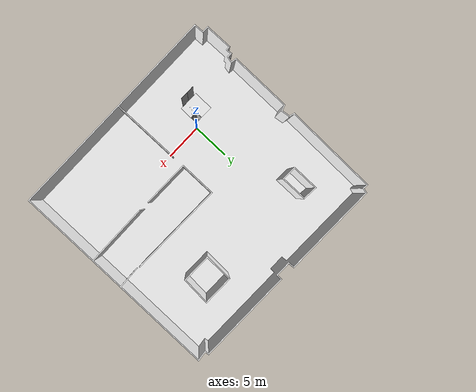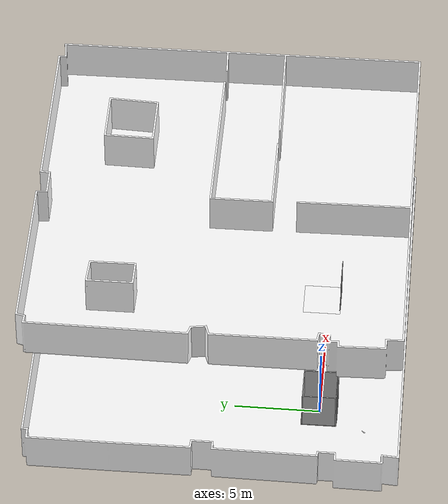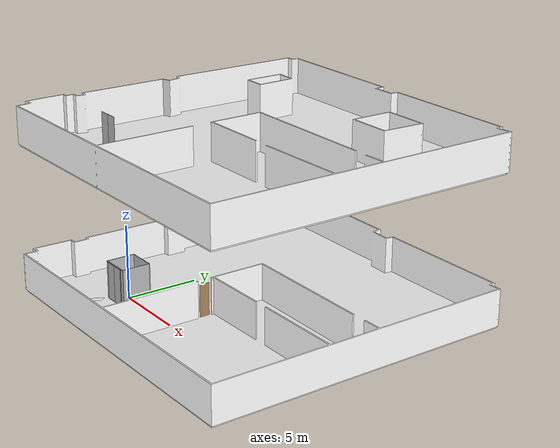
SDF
<sdf version="1.7">
 <world name="world">
  <scene><ambient>0.8 0.8 0.8 1.0</ambient><background>0 0 0</background><grid>false</grid></scene>
  <include><uri>model://sun</uri></include>
  <model name="D001">
   <pose>5.107199895909819 2.4944811544773913 0.0 0 0 1.5707963267948966</pose>
   <link name="right">
    <pose>0 0 1.11 0 0 0</pose>
    <visual name="right_visual">
     <geometry><box><size>0.6863997731035283 0.03 2.2</size></box></geometry>
     <material><ambient>0.5 0.25 0 0.6</ambient><diffuse>0.5 0.25 0 0.6</diffuse></material>
    </visual>
    <collision name="right_collision">
     <geometry><box><size>0.6863997731035283 0.03 2.2</size></box></geometry>
     <surface><contact><collide_bitmask>0x02</collide_bitmask></contact></surface>
    </collision>
    <inertial>
     <mass>50.0</mass>
     <inertia><ixx>20.17041666666667</ixx><iyy>22.12976936881907</iyy><izz>1.9668527021523965</izz></inertia>
    </inertial>
   </link>
   <joint name="right_joint" type="revolute">
    <parent>world</parent>
    <child>right</child>
    <axis><xyz>0 0 1</xyz><limit><lower>0</lower><upper>1.57</upper></limit></axis>
    <pose>0.34819988655176415 0 0 0 0 0</pose>
   </joint>
   <plugin name="door" filename="libdoor.so">
    <v_max_door>0.5</v_max_door>
    <a_max_door>0.3</a_max_door>
    <a_nom_door>0.15</a_nom_door>
    <dx_min_door>0.01</dx_min_door>
    <f_max_door>500.0</f_max_door>
    <door name="D001" type="SwingDoor" left_joint_name="empty_joint" right_joint_name="right_joint"/>
   </plugin>
  </model>
  <include><name>suntech_office_L1</name><uri>model://suntech_office_L1</uri></include>
  <include>
   <name>suntech_office_L2</name>
   <uri>model://suntech_office_L2</uri>
   <pose>0 0 10.0 0 0 0</pose>
  </include>
  <model name="ShaftDoor_L001_L1_door1">
   <pose>-0.000512682636428863 -1.0215345681542252 0.0 0 0 0.0</pose>
   <link name="right_door">
    <pose>0.375 0 1.25 0 0 0</pose>
    <visual name="right_door_visual">
     <geometry><box><size>0.75 0.03 2.5</size></box></geometry>
     <material>
      <ambient>0.5 0.5 0.5 1</ambient>
      <diffuse>0.7 0.7 0.7 1</diffuse>
      <specular>0.6 0.6 0.6 1</specular>
      <emissive>0.1 0.1 0.1 1</emissive>
     </material>
    </visual>
    <collision name="right_door_collision">
     <geometry><box><size>0.75 0.03 2.5</size></box></geometry>
     <surface><contact><collide_bitmask>0x02</collide_bitmask></contact></surface>
    </collision>
   </link>
   <joint name="right_joint" type="prismatic">
    <parent>world</parent>
    <child>right_door</child>
    <axis><xyz>1 0 0</xyz><limit><lower>0</lower><upper>0.75</upper></limit></axis>
   </joint>
   <link name="left_door">
    <pose>-0.375 0 1.25 0 0 0</pose>
    <visual name="left_door_visual">
     <geometry><box><size>0.75 0.03 2.5</size></box></geometry>
     <material>
      <ambient>0.5 0.5 0.5 1</ambient>
      <diffuse>0.7 0.7 0.7 1</diffuse>
      <specular>0.6 0.6 0.6 1</specular>
      <emissive>0.1 0.1 0.1 1</emissive>
     </material>
    </visual>
    <collision name="left_door_collision">
     <geometry><box><size>0.75 0.03 2.5</size></box></geometry>
     <surface><contact><collide_bitmask>0x02</collide_bitmask></contact></surface>
    </collision>
   </link>
   <joint name="left_joint" type="prismatic">
    <parent>world</parent>
    <child>left_door</child>
    <axis><xyz>1 0 0</xyz><limit><lower>-0.75</lower><upper>0</upper></limit></axis>
   </joint>
   <link name="ramp">
    <pose>0 0 -0.025 0 0 0</pose>
    <visual name="ramp_visual">
     <geometry><box><size>1.5 0.1 0.05</size></box></geometry>
     <material>
      <ambient>0.5 0.5 0.5 1</ambient>
      <diffuse>0.7 0.7 0.7 1</diffuse>
      <specular>0.6 0.6 0.6 1</specular>
      <emissive>0.1 0.1 0.1 1</emissive>
     </material>
    </visual>
    <collision name="ramp_collision">
     <geometry><box><size>1.5 0.1 0.05</size></box></geometry>
     <surface><contact><collide_bitmask>0x02</collide_bitmask></contact></surface>
    </collision>
   </link>
   <joint name="ramp_joint" type="fixed"><parent>world</parent><child>ramp</child></joint>
   <plugin name="door" filename="libdoor.so">
    <v_max_door>0.3</v_max_door>
    <a_max_door>0.2</a_max_door>
    <a_nom_door>0.1</a_nom_door>
    <dx_min_door>0.0001</dx_min_door>
    <f_max_door>35.0</f_max_door>
    <door left_joint_name="left_joint" name="ShaftDoor_L001_L1_door1" right_joint_name="right_joint" type="DoubleSlidingDoor"/>
   </plugin>
  </model>
  <model name="ShaftDoor_L001_L2_door1">
   <pose>-0.000512682636428863 -1.0215345681542252 10.0 0 0 0.0</pose>
   <link name="right_door">
    <pose>0.375 0 1.25 0 0 0</pose>
    <visual name="right_door_visual">
     <geometry><box><size>0.75 0.03 2.5</size></box></geometry>
     <material>
      <ambient>0.5 0.5 0.5 1</ambient>
      <diffuse>0.7 0.7 0.7 1</diffuse>
      <specular>0.6 0.6 0.6 1</specular>
      <emissive>0.1 0.1 0.1 1</emissive>
     </material>
    </visual>
    <collision name="right_door_collision">
     <geometry><box><size>0.75 0.03 2.5</size></box></geometry>
     <surface><contact><collide_bitmask>0x02</collide_bitmask></contact></surface>
    </collision>
   </link>
   <joint name="right_joint" type="prismatic">
    <parent>world</parent>
    <child>right_door</child>
    <axis><xyz>1 0 0</xyz><limit><lower>0</lower><upper>0.75</upper></limit></axis>
   </joint>
   <link name="left_door">
    <pose>-0.375 0 1.25 0 0 0</pose>
    <visual name="left_door_visual">
     <geometry><box><size>0.75 0.03 2.5</size></box></geometry>
     <material>
      <ambient>0.5 0.5 0.5 1</ambient>
      <diffuse>0.7 0.7 0.7 1</diffuse>
      <specular>0.6 0.6 0.6 1</specular>
      <emissive>0.1 0.1 0.1 1</emissive>
     </material>
    </visual>
    <collision name="left_door_collision">
     <geometry><box><size>0.75 0.03 2.5</size></box></geometry>
     <surface><contact><collide_bitmask>0x02</collide_bitmask></contact></surface>
    </collision>
   </link>
   <joint name="left_joint" type="prismatic">
    <parent>world</parent>
    <child>left_door</child>
    <axis><xyz>1 0 0</xyz><limit><lower>-0.75</lower><upper>0</upper></limit></axis>
   </joint>
   <link name="ramp">
    <pose>0 0 -0.025 0 0 0</pose>
    <visual name="ramp_visual">
     <geometry><box><size>1.5 0.1 0.05</size></box></geometry>
     <material>
      <ambient>0.5 0.5 0.5 1</ambient>
      <diffuse>0.7 0.7 0.7 1</diffuse>
      <specular>0.6 0.6 0.6 1</specular>
      <emissive>0.1 0.1 0.1 1</emissive>
     </material>
    </visual>
    <collision name="ramp_collision">
     <geometry><box><size>1.5 0.1 0.05</size></box></geometry>
     <surface><contact><collide_bitmask>0x02</collide_bitmask></contact></surface>
    </collision>
   </link>
   <joint name="ramp_joint" type="fixed"><parent>world</parent><child>ramp</child></joint>
   <plugin name="door" filename="libdoor.so">
    <v_max_door>0.3</v_max_door>
    <a_max_door>0.2</a_max_door>
    <a_nom_door>0.1</a_nom_door>
    <dx_min_door>0.0001</dx_min_door>
    <f_max_door>35.0</f_max_door>
    <door left_joint_name="left_joint" name="ShaftDoor_L001_L2_door1" right_joint_name="right_joint" type="DoubleSlidingDoor"/>
   </plugin>
  </model>
  <model name="L001">
   <link name="platform">
    <inertial>
     <mass>1200</mass>
     <inertia><ixx>400.25000000000006</ixx><iyy>400.25000000000006</iyy><izz>800.0</izz></inertia>
    </inertial>
    <visual name="floor_visual">
     <pose>0 0 -0.025 0 0 0</pose>
     <geometry><box><size>2.0 2.0 0.05</size></box></geometry>
     <material>
      <ambient>0.5 0.5 0.5 1</ambient>
      <diffuse>0.7 0.7 0.7 1</diffuse>
      <specular>0.6 0.6 0.6 1</specular>
      <emissive>0.1 0.1 0.1 1</emissive>
     </material>
    </visual>
    <collision name="floor_collision">
     <pose>0 0 -0.025 0 0 0</pose>
     <geometry><box><size>2.0 2.0 0.05</size></box></geometry>
     <surface><contact><collide_bitmask>0x01</collide_bitmask></contact></surface>
    </collision>
    <visual name="frontwall1_visual">
     <pose>0.0 0.975 1.25 0 0 0</pose>
     <geometry><box><size>2.0 0.05 2.5</size></box></geometry>
     <material>
      <ambient>0.5 0.5 0.5 1</ambient>
      <diffuse>0.7 0.7 0.7 1</diffuse>
      <specular>0.6 0.6 0.6 1</specular>
      <emissive>0.1 0.1 0.1 1</emissive>
     </material>
    </visual>
    <collision name="frontwall1_collision">
     <pose>0.0 0.975 1.25 0 0 0</pose>
     <geometry><box><size>2.0 0.05 2.5</size></box></geometry>
     <surface><contact><collide_bitmask>0x01</collide_bitmask></contact></surface>
    </collision>
    <visual name="backwall1_visual">
     <pose>-0.875 -0.975 1.25 0 0 0</pose>
     <geometry><box><size>0.25 0.05 2.5</size></box></geometry>
     <material>
      <ambient>0.5 0.5 0.5 1</ambient>
      <diffuse>0.7 0.7 0.7 1</diffuse>
      <specular>0.6 0.6 0.6 1</specular>
      <emissive>0.1 0.1 0.1 1</emissive>
     </material>
    </visual>
    <collision name="backwall1_collision">
     <pose>-0.875 -0.975 1.25 0 0 0</pose>
     <geometry><box><size>0.25 0.05 2.5</size></box></geometry>
     <surface><contact><collide_bitmask>0x01</collide_bitmask></contact></surface>
    </collision>
    <visual name="backwall2_visual">
     <pose>0.875 -0.975 1.25 0 0 0</pose>
     <geometry><box><size>0.25 0.05 2.5</size></box></geometry>
     <material>
      <ambient>0.5 0.5 0.5 1</ambient>
      <diffuse>0.7 0.7 0.7 1</diffuse>
      <specular>0.6 0.6 0.6 1</specular>
      <emissive>0.1 0.1 0.1 1</emissive>
     </material>
    </visual>
    <collision name="backwall2_collision">
     <pose>0.875 -0.975 1.25 0 0 0</pose>
     <geometry><box><size>0.25 0.05 2.5</size></box></geometry>
     <surface><contact><collide_bitmask>0x01</collide_bitmask></contact></surface>
    </collision>
    <visual name="leftwall1_visual">
     <pose>-0.975 0.0 1.25 0 0 1.5707963267948966</pose>
     <geometry><box><size>1.9 0.05 2.5</size></box></geometry>
     <material>
      <ambient>0.5 0.5 0.5 1</ambient>
      <diffuse>0.7 0.7 0.7 1</diffuse>
      <specular>0.6 0.6 0.6 1</specular>
      <emissive>0.1 0.1 0.1 1</emissive>
     </material>
    </visual>
    <collision name="leftwall1_collision">
     <pose>-0.975 0.0 1.25 0 0 1.5707963267948966</pose>
     <geometry><box><size>1.9 0.05 2.5</size></box></geometry>
     <surface><contact><collide_bitmask>0x01</collide_bitmask></contact></surface>
    </collision>
    <visual name="rightwall1_visual">
     <pose>0.975 0.0 1.25 0 0 1.5707963267948966</pose>
     <geometry><box><size>1.9 0.05 2.5</size></box></geometry>
     <material>
      <ambient>0.5 0.5 0.5 1</ambient>
      <diffuse>0.7 0.7 0.7 1</diffuse>
      <specular>0.6 0.6 0.6 1</specular>
      <emissive>0.1 0.1 0.1 1</emissive>
     </material>
    </visual>
    <collision name="rightwall1_collision">
     <pose>0.975 0.0 1.25 0 0 1.5707963267948966</pose>
     <geometry><box><size>1.9 0.05 2.5</size></box></geometry>
     <surface><contact><collide_bitmask>0x01</collide_bitmask></contact></surface>
    </collision>
   </link>
   <joint name="cabin_joint" type="prismatic">
    <parent>world</parent>
    <child>platform</child>
    <axis><xyz>0 0 1</xyz></axis>
   </joint>
   <model name="CabinDoor_L001_door1">
    <pose>0.0 -0.975 0 0 0 0.0</pose>
    <link name="right_door">
     <pose>0.375 0 1.25 0 0 0</pose>
     <visual name="right_door_visual">
      <geometry><box><size>0.75 0.03 2.5</size></box></geometry>
      <material>
       <ambient>0.5 0.5 0.5 1</ambient>
       <diffuse>0.7 0.7 0.7 1</diffuse>
       <specular>0.6 0.6 0.6 1</specular>
       <emissive>0.1 0.1 0.1 1</emissive>
      </material>
     </visual>
     <collision name="right_door_collision">
      <geometry><box><size>0.75 0.03 2.5</size></box></geometry>
      <surface><contact><collide_bitmask>0x02</collide_bitmask></contact></surface>
     </collision>
    </link>
    <joint name="right_joint" type="prismatic">
     <parent>platform</parent>
     <child>right_door</child>
     <axis><xyz>1 0 0</xyz><limit><lower>0</lower><upper>0.75</upper></limit></axis>
    </joint>
    <link name="left_door">
     <pose>-0.375 0 1.25 0 0 0</pose>
     <visual name="left_door_visual">
      <geometry><box><size>0.75 0.03 2.5</size></box></geometry>
      <material>
       <ambient>0.5 0.5 0.5 1</ambient>
       <diffuse>0.7 0.7 0.7 1</diffuse>
       <specular>0.6 0.6 0.6 1</specular>
       <emissive>0.1 0.1 0.1 1</emissive>
      </material>
     </visual>
     <collision name="left_door_collision">
      <geometry><box><size>0.75 0.03 2.5</size></box></geometry>
      <surface><contact><collide_bitmask>0x02</collide_bitmask></contact></surface>
     </collision>
    </link>
    <joint name="left_joint" type="prismatic">
     <parent>platform</parent>
     <child>left_door</child>
     <axis><xyz>1 0 0</xyz><limit><lower>-0.75</lower><upper>0</upper></limit></axis>
    </joint>
    <plugin name="door" filename="libdoor.so">
     <v_max_door>0.3</v_max_door>
     <a_max_door>0.2</a_max_door>
     <a_nom_door>0.1</a_nom_door>
     <dx_min_door>0.0001</dx_min_door>
     <f_max_door>35.0</f_max_door>
     <door left_joint_name="left_joint" name="CabinDoor_L001_door1" right_joint_name="right_joint" type="DoubleSlidingDoor"/>
    </plugin>
   </model>
   <plugin name="lift" filename="liblift.so">
    <lift_name>L001</lift_name>
    <floor name="L1" elevation="0.0">
     <door_pair cabin_door="CabinDoor_L001_door1" shaft_door="ShaftDoor_L001_L1_door1"/>
    </floor>
    <floor name="L2" elevation="10.0">
     <door_pair cabin_door="CabinDoor_L001_door1" shaft_door="ShaftDoor_L001_L2_door1"/>
    </floor>
    <initial_floor>L2</initial_floor>
    <v_max_cabin>2.0</v_max_cabin>
    <a_max_cabin>1.2</a_max_cabin>
    <a_nom_cabin>1.0</a_nom_cabin>
    <dx_min_cabin>0.001</dx_min_cabin>
    <f_max_cabin>25323.0</f_max_cabin>
    <cabin_joint_name>cabin_joint</cabin_joint_name>
   </plugin>
   <pose>-0.000512682636428863 0.02846543184577498 0 0 0 0.0</pose>
  </model>
  <rmf_charger_waypoints name="charger_waypoints">
   <rmf_vertex name="n2" x="2.4678512938679944" y="2.4090091089520467" level="L1"/>
   <rmf_vertex name="n1" x="-0.32468815881825497" y="4.545030713866688" level="L1"/>
  </rmf_charger_waypoints>
 </world>
</sdf>

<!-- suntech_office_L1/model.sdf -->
<sdf version="1.7">
  <model name="suntech_office_L1">
    <static>true</static>
    <link name="floor_1">
      <visual name="visual">
        <geometry>
          <mesh>
            <uri>model://suntech_office_L1/meshes/floor_1.obj</uri>
          </mesh>
        </geometry>
        <material>
          <diffuse>1.0 1.0 1.0</diffuse>
          <specular>0.1 0.1 0.1</specular>
          <pbr>
            <metal>
              <metalness>0.0</metalness>
              <albedo_map>model://suntech_office_L1/meshes/white_beige_tiles.png</albedo_map>
            </metal>
          </pbr>
          <script>
            <uri>model://suntech_office_L1/meshes/</uri>
            <name>floor_1_Diffuse</name>
          </script>
        </material>
      </visual>
      <collision name="collision">
        <geometry>
          <mesh>
            <uri>model://suntech_office_L1/meshes/floor_1.obj</uri>
          </mesh>
        </geometry>
        <surface>
          <contact>
            <collide_bitmask>0x01</collide_bitmask>
          </contact>
        </surface>
      </collision>
    </link>
    <link name="floor_2">
      <visual name="visual">
        <geometry>
          <mesh>
            <uri>model://suntech_office_L1/meshes/floor_2.obj</uri>
          </mesh>
        </geometry>
        <material>
          <diffuse>1.0 1.0 1.0</diffuse>
          <specular>0.1 0.1 0.1</specular>
          <pbr>
            <metal>
              <metalness>0.0</metalness>
              <albedo_map>model://suntech_office_L1/meshes/blue_linoleum.png</albedo_map>
            </metal>
          </pbr>
          <script>
            <uri>model://suntech_office_L1/meshes/</uri>
            <name>floor_2_Diffuse</name>
          </script>
        </material>
      </visual>
      <collision name="collision">
        <geometry>
          <mesh>
            <uri>model://suntech_office_L1/meshes/floor_2.obj</uri>
          </mesh>
        </geometry>
        <surface>
          <contact>
            <collide_bitmask>0x01</collide_bitmask>
          </contact>
        </surface>
      </collision>
    </link>
    <link name="wall_1">
      <visual name="wall_1">
        <geometry>
          <mesh>
            <uri>model://suntech_office_L1/meshes/wall_1.obj</uri>
          </mesh>
        </geometry>
        <transparency>0.0</transparency>
        <material>
          <diffuse>1.0 1.0 1.0</diffuse>
          <specular>0.1 0.1 0.1</specular>
          <pbr>
            <metal>
              <metalness>0.0</metalness>
              <albedo_map>model://suntech_office_L1/meshes/default.png</albedo_map>
            </metal>
          </pbr>
          <script>
            <uri>model://suntech_office_L1/meshes/</uri>
            <name>wall_1_Diffuse</name>
          </script>
        </material>
      </visual>
      <collision name="collision">
        <geometry>
          <mesh>
            <uri>model://suntech_office_L1/meshes/wall_1.obj</uri>
          </mesh>
        </geometry>
        <surface>
          <contact>
            <collide_bitmask>0x01</collide_bitmask>
          </contact>
        </surface>
      </collision>
      <pose>-5.644287483707139 -4.817459302655047 0 0 0 0</pose>
    </link>
  </model>
</sdf>

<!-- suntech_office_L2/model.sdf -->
<sdf version="1.7">
  <model name="suntech_office_L2">
    <static>true</static>
    <link name="floor_1">
      <visual name="visual">
        <geometry>
          <mesh>
            <uri>model://suntech_office_L2/meshes/floor_1.obj</uri>
          </mesh>
        </geometry>
        <material>
          <diffuse>1.0 1.0 1.0</diffuse>
          <specular>0.1 0.1 0.1</specular>
          <pbr>
            <metal>
              <metalness>0.0</metalness>
              <albedo_map>model://suntech_office_L2/meshes/blue_linoleum.png</albedo_map>
            </metal>
          </pbr>
          <script>
            <uri>model://suntech_office_L2/meshes/</uri>
            <name>floor_1_Diffuse</name>
          </script>
        </material>
      </visual>
      <collision name="collision">
        <geometry>
          <mesh>
            <uri>model://suntech_office_L2/meshes/floor_1.obj</uri>
          </mesh>
        </geometry>
        <surface>
          <contact>
            <collide_bitmask>0x01</collide_bitmask>
          </contact>
        </surface>
      </collision>
    </link>
    <link name="wall_1">
      <visual name="wall_1">
        <geometry>
          <mesh>
            <uri>model://suntech_office_L2/meshes/wall_1.obj</uri>
          </mesh>
        </geometry>
        <transparency>0.0</transparency>
        <material>
          <diffuse>1.0 1.0 1.0</diffuse>
          <specular>0.1 0.1 0.1</specular>
          <pbr>
            <metal>
              <metalness>0.0</metalness>
              <albedo_map>model://suntech_office_L2/meshes/default.png</albedo_map>
            </metal>
          </pbr>
          <script>
            <uri>model://suntech_office_L2/meshes/</uri>
            <name>wall_1_Diffuse</name>
          </script>
        </material>
      </visual>
      <collision name="collision">
        <geometry>
          <mesh>
            <uri>model://suntech_office_L2/meshes/wall_1.obj</uri>
          </mesh>
        </geometry>
        <surface>
          <contact>
            <collide_bitmask>0x01</collide_bitmask>
          </contact>
        </surface>
      </collision>
      <pose>-5.667730117033339 -4.769643272915803 0 0 0 0</pose>
    </link>
  </model>
</sdf>
